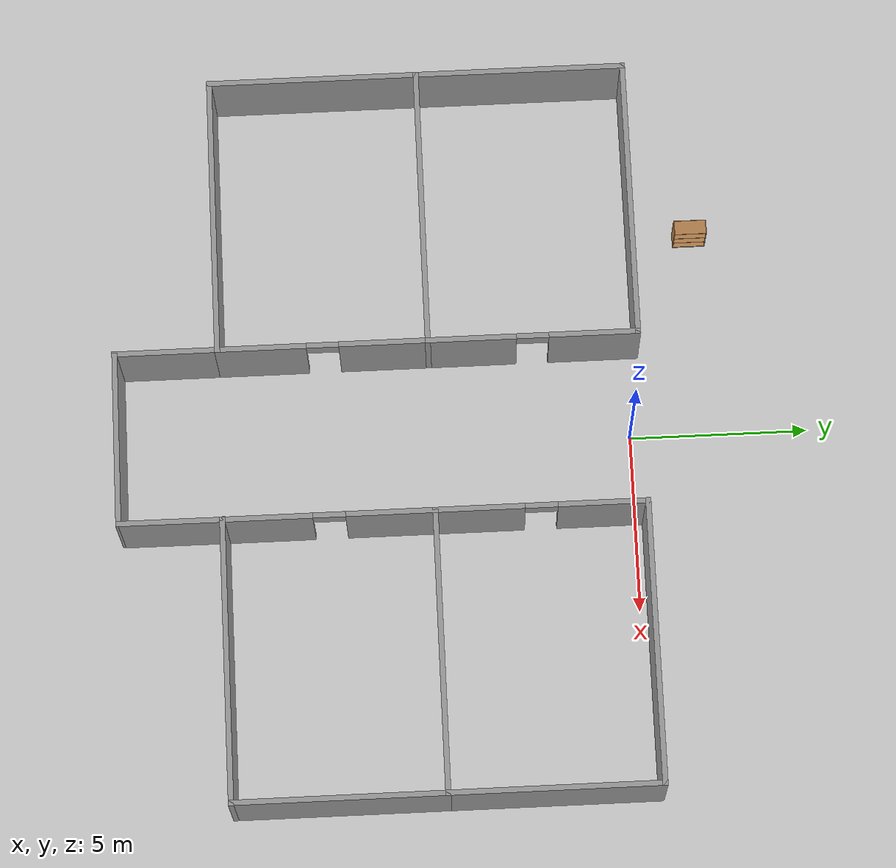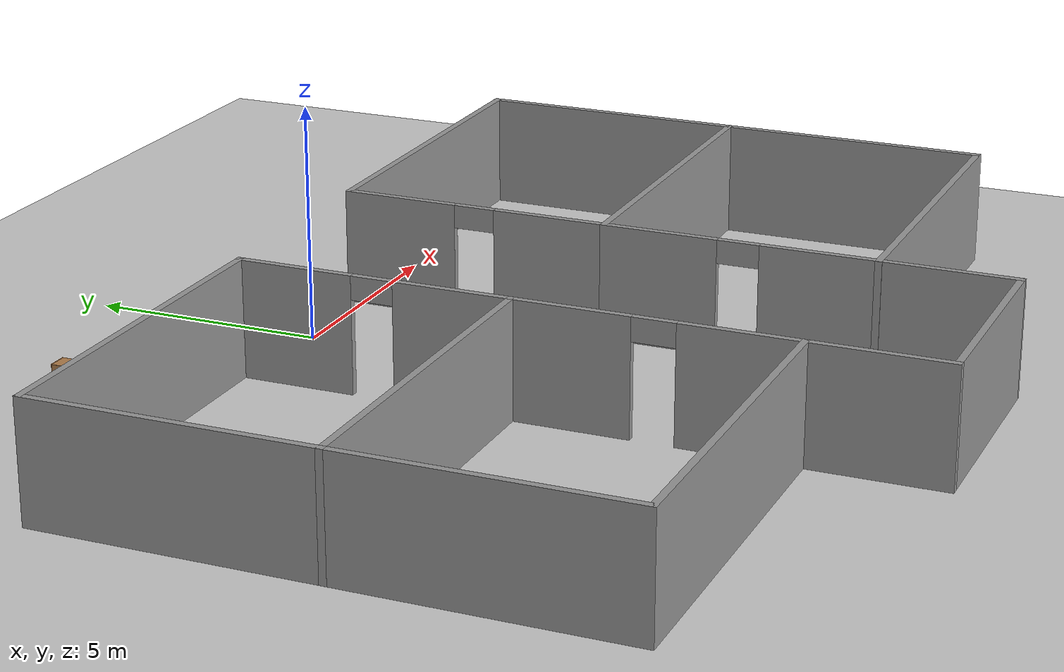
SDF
<sdf version="1.6">
 <world name="default">
  <model name="ground_plane">
   <static>1</static>
   <link name="link">
    <collision name="collision">
     <geometry><plane><normal>0 0 1</normal><size>100 100</size></plane></geometry>
     <surface>
      <contact><collide_bitmask>65535</collide_bitmask></contact>
      <friction><ode><mu>100</mu><mu2>50</mu2></ode></friction>
     </surface>
    </collision>
    <visual name="visual">
     <cast_shadows>0</cast_shadows>
     <geometry><plane><normal>0 0 1</normal><size>100 100</size></plane></geometry>
     <material>
      <script><uri>file://media/materials/scripts/gazebo.material</uri><name>Gazebo/Grey</name></script>
     </material>
    </visual>
   </link>
  </model>
  <model name="husky_SAGAT_first_half_docker">
   <pose>0 -7 0 0 -0 0</pose>
   <link name="Wall_11">
    <collision name="Wall_11_Collision">
     <geometry><box><size>6 0.15 2.5</size></box></geometry>
     <pose>0 0 1.25 0 -0 0</pose>
    </collision>
    <visual name="Wall_11_Visual">
     <pose>0 0 1.25 0 -0 0</pose>
     <geometry><box><size>6 0.15 2.5</size></box></geometry>
     <material>
      <script><uri>file://media/materials/scripts/gazebo.material</uri><name>Gazebo/Grey</name></script>
      <ambient>1 1 1 1</ambient>
     </material>
     <meta><layer>0</layer></meta>
    </visual>
    <pose>-10.28 4.35013 0 0 -0 1.5708</pose>
   </link>
   <link name="Wall_12">
    <collision name="Wall_12_Collision">
     <geometry><box><size>8 0.15 2.5</size></box></geometry>
     <pose>0 0 1.25 0 -0 0</pose>
    </collision>
    <visual name="Wall_12_Visual">
     <pose>0 0 1.25 0 -0 0</pose>
     <geometry><box><size>8 0.15 2.5</size></box></geometry>
     <material>
      <script><uri>file://media/materials/scripts/gazebo.material</uri><name>Gazebo/Grey</name></script>
      <ambient>1 1 1 1</ambient>
     </material>
     <meta><layer>0</layer></meta>
    </visual>
    <pose>-6.355 7.27513 0 0 -0 0</pose>
   </link>
   <link name="Wall_13">
    <pose>-2.43 4.35013 0 0 -0 -1.5708</pose>
    <visual name="Wall_13_Visual_0">
     <pose>-1.72303 0 1.25 0 -0 0</pose>
     <geometry><box><size>2.55394 0.15 2.5</size></box></geometry>
     <material>
      <script><uri>file://media/materials/scripts/gazebo.material</uri><name>Gazebo/Grey</name></script>
      <ambient>1 1 1 1</ambient>
     </material>
     <meta><layer>0</layer></meta>
    </visual>
    <collision name="Wall_13_Collision_0">
     <geometry><box><size>2.55394 0.15 2.5</size></box></geometry>
     <pose>-1.72303 0 1.25 0 -0 0</pose>
    </collision>
    <visual name="Wall_13_Visual_1">
     <pose>1.72697 0 1.25 0 -0 0</pose>
     <geometry><box><size>2.54606 0.15 2.5</size></box></geometry>
     <material>
      <script><uri>file://media/materials/scripts/gazebo.material</uri><name>Gazebo/Grey</name></script>
      <ambient>1 1 1 1</ambient>
     </material>
     <meta><layer>0</layer></meta>
    </visual>
    <collision name="Wall_13_Collision_1">
     <geometry><box><size>2.54606 0.15 2.5</size></box></geometry>
     <pose>1.72697 0 1.25 0 -0 0</pose>
    </collision>
    <visual name="Wall_13_Visual_2">
     <pose>0.003939 0 2.25 0 -0 0</pose>
     <geometry><box><size>0.9 0.15 0.5</size></box></geometry>
     <material>
      <script><uri>file://media/materials/scripts/gazebo.material</uri><name>Gazebo/Grey</name></script>
      <ambient>1 1 1 1</ambient>
     </material>
     <meta><layer>0</layer></meta>
    </visual>
    <collision name="Wall_13_Collision_2">
     <geometry><box><size>0.9 0.15 0.5</size></box></geometry>
     <pose>0.003939 0 2.25 0 -0 0</pose>
    </collision>
   </link>
   <link name="Wall_16">
    <collision name="Wall_16_Collision">
     <geometry><box><size>0.16 0.15 2.5</size></box></geometry>
     <pose>0 0 1.25 0 -0 0</pose>
    </collision>
    <visual name="Wall_16_Visual">
     <pose>0 0 1.25 0 -0 0</pose>
     <geometry><box><size>0.16 0.15 2.5</size></box></geometry>
     <material>
      <script><uri>file://media/materials/scripts/gazebo.material</uri><name>Gazebo/Grey</name></script>
      <ambient>1 1 1 1</ambient>
     </material>
     <meta><layer>0</layer></meta>
    </visual>
    <pose>2.425 -4.42487 0 0 -0 0</pose>
   </link>
   <link name="Wall_17">
    <pose>2.43 -1.49987 0 0 -0 1.5708</pose>
    <visual name="Wall_17_Visual_0">
     <pose>-1.72228 0 1.25 0 -0 0</pose>
     <geometry><box><size>2.55545 0.15 2.5</size></box></geometry>
     <material>
      <script><uri>file://media/materials/scripts/gazebo.material</uri><name>Gazebo/Grey</name></script>
      <ambient>1 1 1 1</ambient>
     </material>
     <meta><layer>0</layer></meta>
    </visual>
    <collision name="Wall_17_Collision_0">
     <geometry><box><size>2.55545 0.15 2.5</size></box></geometry>
     <pose>-1.72228 0 1.25 0 -0 0</pose>
    </collision>
    <visual name="Wall_17_Visual_1">
     <pose>1.72772 0 1.25 0 -0 0</pose>
     <geometry><box><size>2.54455 0.15 2.5</size></box></geometry>
     <material>
      <script><uri>file://media/materials/scripts/gazebo.material</uri><name>Gazebo/Grey</name></script>
      <ambient>1 1 1 1</ambient>
     </material>
     <meta><layer>0</layer></meta>
    </visual>
    <collision name="Wall_17_Collision_1">
     <geometry><box><size>2.54455 0.15 2.5</size></box></geometry>
     <pose>1.72772 0 1.25 0 -0 0</pose>
    </collision>
    <visual name="Wall_17_Visual_2">
     <pose>0.005449 0 2.25 0 -0 0</pose>
     <geometry><box><size>0.9 0.15 0.5</size></box></geometry>
     <material>
      <script><uri>file://media/materials/scripts/gazebo.material</uri><name>Gazebo/Grey</name></script>
      <ambient>1 1 1 1</ambient>
     </material>
     <meta><layer>0</layer></meta>
    </visual>
    <collision name="Wall_17_Collision_2">
     <geometry><box><size>0.9 0.15 0.5</size></box></geometry>
     <pose>0.005449 0 2.25 0 -0 0</pose>
    </collision>
   </link>
   <link name="Wall_18">
    <collision name="Wall_18_Collision">
     <geometry><box><size>8 0.15 2.5</size></box></geometry>
     <pose>0 0 1.25 0 -0 0</pose>
    </collision>
    <visual name="Wall_18_Visual">
     <pose>0 0 1.25 0 -0 0</pose>
     <geometry><box><size>8 0.15 2.5</size></box></geometry>
     <material>
      <script><uri>file://media/materials/scripts/gazebo.material</uri><name>Gazebo/Grey</name></script>
      <ambient>1 1 1 1</ambient>
     </material>
     <meta><layer>0</layer></meta>
    </visual>
    <pose>6.355 1.42513 0 0 -0 0</pose>
   </link>
   <link name="Wall_19">
    <collision name="Wall_19_Collision">
     <geometry><box><size>6 0.15 2.5</size></box></geometry>
     <pose>0 0 1.25 0 -0 0</pose>
    </collision>
    <visual name="Wall_19_Visual">
     <pose>0 0 1.25 0 -0 0</pose>
     <geometry><box><size>6 0.15 2.5</size></box></geometry>
     <material>
      <script><uri>file://media/materials/scripts/gazebo.material</uri><name>Gazebo/Grey</name></script>
      <ambient>1 1 1 1</ambient>
     </material>
     <meta><layer>0</layer></meta>
    </visual>
    <pose>10.28 -1.49987 0 0 -0 -1.5708</pose>
   </link>
   <link name="Wall_20">
    <collision name="Wall_20_Collision">
     <geometry><box><size>8 0.15 2.5</size></box></geometry>
     <pose>0 0 1.25 0 -0 0</pose>
    </collision>
    <visual name="Wall_20_Visual">
     <pose>0 0 1.25 0 -0 0</pose>
     <geometry><box><size>8 0.15 2.5</size></box></geometry>
     <material>
      <script><uri>file://media/materials/scripts/gazebo.material</uri><name>Gazebo/Grey</name></script>
      <ambient>1 1 1 1</ambient>
     </material>
     <meta><layer>0</layer></meta>
    </visual>
    <pose>6.355 -4.42487 0 0 -0 3.14159</pose>
   </link>
   <link name="Wall_24">
    <pose>2.43 4.35013 0 0 -0 1.5708</pose>
    <visual name="Wall_24_Visual_0">
     <pose>-1.72718 0 1.25 0 -0 0</pose>
     <geometry><box><size>2.54563 0.15 2.5</size></box></geometry>
     <material>
      <script><uri>file://media/materials/scripts/gazebo.material</uri><name>Gazebo/Grey</name></script>
      <ambient>1 1 1 1</ambient>
     </material>
     <meta><layer>0</layer></meta>
    </visual>
    <collision name="Wall_24_Collision_0">
     <geometry><box><size>2.54563 0.15 2.5</size></box></geometry>
     <pose>-1.72718 0 1.25 0 -0 0</pose>
    </collision>
    <visual name="Wall_24_Visual_1">
     <pose>1.72282 0 1.25 0 -0 0</pose>
     <geometry><box><size>2.55437 0.15 2.5</size></box></geometry>
     <material>
      <script><uri>file://media/materials/scripts/gazebo.material</uri><name>Gazebo/Grey</name></script>
      <ambient>1 1 1 1</ambient>
     </material>
     <meta><layer>0</layer></meta>
    </visual>
    <collision name="Wall_24_Collision_1">
     <geometry><box><size>2.55437 0.15 2.5</size></box></geometry>
     <pose>1.72282 0 1.25 0 -0 0</pose>
    </collision>
    <visual name="Wall_24_Visual_2">
     <pose>-0.004369 0 2.25 0 -0 0</pose>
     <geometry><box><size>0.9 0.15 0.5</size></box></geometry>
     <material>
      <script><uri>file://media/materials/scripts/gazebo.material</uri><name>Gazebo/Grey</name></script>
      <ambient>1 1 1 1</ambient>
     </material>
     <meta><layer>0</layer></meta>
    </visual>
    <collision name="Wall_24_Collision_2">
     <geometry><box><size>0.9 0.15 0.5</size></box></geometry>
     <pose>-0.004369 0 2.25 0 -0 0</pose>
    </collision>
   </link>
   <link name="Wall_25">
    <collision name="Wall_25_Collision">
     <geometry><box><size>8 0.15 2.5</size></box></geometry>
     <pose>0 0 1.25 0 -0 0</pose>
    </collision>
    <visual name="Wall_25_Visual">
     <pose>0 0 1.25 0 -0 0</pose>
     <geometry><box><size>8 0.15 2.5</size></box></geometry>
     <material>
      <script><uri>file://media/materials/scripts/gazebo.material</uri><name>Gazebo/Grey</name></script>
      <ambient>1 1 1 1</ambient>
     </material>
     <meta><layer>0</layer></meta>
    </visual>
    <pose>6.355 7.27513 0 0 -0 0</pose>
   </link>
   <link name="Wall_26">
    <collision name="Wall_26_Collision">
     <geometry><box><size>6 0.15 2.5</size></box></geometry>
     <pose>0 0 1.25 0 -0 0</pose>
    </collision>
    <visual name="Wall_26_Visual">
     <pose>0 0 1.25 0 -0 0</pose>
     <geometry><box><size>6 0.15 2.5</size></box></geometry>
     <material>
      <script><uri>file://media/materials/scripts/gazebo.material</uri><name>Gazebo/Grey</name></script>
      <ambient>1 1 1 1</ambient>
     </material>
     <meta><layer>0</layer></meta>
    </visual>
    <pose>10.28 4.35013 0 0 -0 -1.5708</pose>
   </link>
   <link name="Wall_29">
    <collision name="Wall_29_Collision">
     <geometry><box><size>3 0.15 2.5</size></box></geometry>
     <pose>0 0 1.25 0 -0 0</pose>
    </collision>
    <visual name="Wall_29_Visual">
     <pose>0 0 1.25 0 -0 0</pose>
     <geometry><box><size>3 0.15 2.5</size></box></geometry>
     <material>
      <script><uri>file://media/materials/scripts/gazebo.material</uri><name>Gazebo/Grey</name></script>
      <ambient>1 1 1 1</ambient>
     </material>
     <meta><layer>0</layer></meta>
    </visual>
    <pose>-2.43 -5.84987 0 0 -0 -1.5708</pose>
   </link>
   <link name="Wall_30">
    <collision name="Wall_30_Collision">
     <geometry><box><size>5 0.15 2.5</size></box></geometry>
     <pose>0 0 1.25 0 -0 0</pose>
    </collision>
    <visual name="Wall_30_Visual">
     <pose>0 0 1.25 0 -0 0</pose>
     <geometry><box><size>5 0.15 2.5</size></box></geometry>
     <material>
      <script><uri>file://media/materials/scripts/gazebo.material</uri><name>Gazebo/Grey</name></script>
      <ambient>1 1 1 1</ambient>
     </material>
     <meta><layer>0</layer></meta>
    </visual>
    <pose>-0.005 -7.27487 0 0 -0 0</pose>
   </link>
   <link name="Wall_31">
    <collision name="Wall_31_Collision">
     <geometry><box><size>3.00002 0.15 2.5</size></box></geometry>
     <pose>0 0 1.25 0 -0 0</pose>
    </collision>
    <visual name="Wall_31_Visual">
     <pose>0 0 1.25 0 -0 0</pose>
     <geometry><box><size>3.00002 0.15 2.5</size></box></geometry>
     <material>
      <script><uri>file://media/materials/scripts/gazebo.material</uri><name>Gazebo/Grey</name></script>
      <ambient>1 1 1 1</ambient>
     </material>
     <meta><layer>0</layer></meta>
    </visual>
    <pose>2.425 -5.84987 0 0 -0 1.56729</pose>
   </link>
   <link name="Wall_4">
    <collision name="Wall_4_Collision">
     <geometry><box><size>8 0.15 2.5</size></box></geometry>
     <pose>0 0 1.25 0 -0 0</pose>
    </collision>
    <visual name="Wall_4_Visual">
     <pose>0 0 1.25 0 -0 0</pose>
     <geometry><box><size>8 0.15 2.5</size></box></geometry>
     <material>
      <script><uri>file://media/materials/scripts/gazebo.material</uri><name>Gazebo/Grey</name></script>
      <ambient>1 1 1 1</ambient>
     </material>
     <meta><layer>0</layer></meta>
    </visual>
    <pose>-6.355 -4.42487 0 0 -0 0</pose>
   </link>
   <link name="Wall_5">
    <pose>-2.43 -1.49987 0 0 -0 1.5708</pose>
    <visual name="Wall_5_Visual_0">
     <pose>-1.7262 0 1.25 0 -0 0</pose>
     <geometry><box><size>2.5476 0.15 2.5</size></box></geometry>
     <material>
      <script><uri>file://media/materials/scripts/gazebo.material</uri><name>Gazebo/Grey</name></script>
      <ambient>1 1 1 1</ambient>
     </material>
     <meta><layer>0</layer></meta>
    </visual>
    <collision name="Wall_5_Collision_0">
     <geometry><box><size>2.5476 0.15 2.5</size></box></geometry>
     <pose>-1.7262 0 1.25 0 -0 0</pose>
    </collision>
    <visual name="Wall_5_Visual_1">
     <pose>1.7238 0 1.25 0 -0 0</pose>
     <geometry><box><size>2.5524 0.15 2.5</size></box></geometry>
     <material>
      <script><uri>file://media/materials/scripts/gazebo.material</uri><name>Gazebo/Grey</name></script>
      <ambient>1 1 1 1</ambient>
     </material>
     <meta><layer>0</layer></meta>
    </visual>
    <collision name="Wall_5_Collision_1">
     <geometry><box><size>2.5524 0.15 2.5</size></box></geometry>
     <pose>1.7238 0 1.25 0 -0 0</pose>
    </collision>
    <visual name="Wall_5_Visual_2">
     <pose>-0.002396 0 2.25 0 -0 0</pose>
     <geometry><box><size>0.9 0.15 0.5</size></box></geometry>
     <material>
      <script><uri>file://media/materials/scripts/gazebo.material</uri><name>Gazebo/Grey</name></script>
      <ambient>1 1 1 1</ambient>
     </material>
     <meta><layer>0</layer></meta>
    </visual>
    <collision name="Wall_5_Collision_2">
     <geometry><box><size>0.9 0.15 0.5</size></box></geometry>
     <pose>-0.002396 0 2.25 0 -0 0</pose>
    </collision>
   </link>
   <link name="Wall_6">
    <collision name="Wall_6_Collision">
     <geometry><box><size>8 0.15 2.5</size></box></geometry>
     <pose>0 0 1.25 0 -0 0</pose>
    </collision>
    <visual name="Wall_6_Visual">
     <pose>0 0 1.25 0 -0 0</pose>
     <geometry><box><size>8 0.15 2.5</size></box></geometry>
     <material>
      <script><uri>file://media/materials/scripts/gazebo.material</uri><name>Gazebo/Grey</name></script>
      <ambient>1 1 1 1</ambient>
     </material>
     <meta><layer>0</layer></meta>
    </visual>
    <pose>-6.355 1.42513 0 0 -0 3.14159</pose>
   </link>
   <link name="Wall_7">
    <collision name="Wall_7_Collision">
     <geometry><box><size>6 0.15 2.5</size></box></geometry>
     <pose>0 0 1.25 0 -0 0</pose>
    </collision>
    <visual name="Wall_7_Visual">
     <pose>0 0 1.25 0 -0 0</pose>
     <geometry><box><size>6 0.15 2.5</size></box></geometry>
     <material>
      <script><uri>file://media/materials/scripts/gazebo.material</uri><name>Gazebo/Grey</name></script>
      <ambient>1 1 1 1</ambient>
     </material>
     <meta><layer>0</layer></meta>
    </visual>
    <pose>-10.28 -1.49987 0 0 -0 -1.5708</pose>
   </link>
   <static>1</static>
  </model>
  <model name="bookshelf_0">
   <static>1</static>
   <link name="link">
    <inertial><mass>1</mass></inertial>
    <collision name="back">
     <pose>0 0.005 0.6 0 -0 0</pose>
     <geometry><box><size>0.9 0.01 1.2</size></box></geometry>
    </collision>
    <visual name="visual1">
     <pose>0 0.005 0.6 0 -0 0</pose>
     <geometry><box><size>0.9 0.01 1.2</size></box></geometry>
     <material>
      <script><uri>file://media/materials/scripts/gazebo.material</uri><name>Gazebo/Wood</name></script>
     </material>
    </visual>
    <collision name="left_side">
     <pose>0.45 -0.195 0.6 0 -0 0</pose>
     <geometry><box><size>0.02 0.4 1.2</size></box></geometry>
    </collision>
    <visual name="visual2">
     <pose>0.45 -0.195 0.6 0 -0 0</pose>
     <geometry><box><size>0.02 0.4 1.2</size></box></geometry>
     <material>
      <script><uri>file://media/materials/scripts/gazebo.material</uri><name>Gazebo/Wood</name></script>
     </material>
    </visual>
    <collision name="right_side">
     <pose>-0.45 -0.195 0.6 0 -0 0</pose>
     <geometry><box><size>0.02 0.4 1.2</size></box></geometry>
    </collision>
    <visual name="visual3">
     <pose>-0.45 -0.195 0.6 0 -0 0</pose>
     <geometry><box><size>0.02 0.4 1.2</size></box></geometry>
     <material>
      <script><uri>file://media/materials/scripts/gazebo.material</uri><name>Gazebo/Wood</name></script>
     </material>
    </visual>
    <collision name="bottom">
     <pose>0 -0.195 0.03 0 -0 0</pose>
     <geometry><box><size>0.88 0.4 0.06</size></box></geometry>
    </collision>
    <visual name="visual4">
     <pose>0 -0.195 0.03 0 -0 0</pose>
     <geometry><box><size>0.88 0.4 0.06</size></box></geometry>
     <material>
      <script><uri>file://media/materials/scripts/gazebo.material</uri><name>Gazebo/Wood</name></script>
     </material>
    </visual>
    <collision name="top">
     <pose>0 -0.195 1.19 0 -0 0</pose>
     <geometry><box><size>0.88 0.4 0.02</size></box></geometry>
    </collision>
    <visual name="visual5">
     <pose>0 -0.195 1.19 0 -0 0</pose>
     <geometry><box><size>0.88 0.4 0.02</size></box></geometry>
     <material>
      <script><uri>file://media/materials/scripts/gazebo.material</uri><name>Gazebo/Wood</name></script>
     </material>
    </visual>
    <collision name="low_shelf">
     <pose>0 -0.195 0.43 0 -0 0</pose>
     <geometry><box><size>0.88 0.4 0.02</size></box></geometry>
    </collision>
    <visual name="visual6">
     <pose>0 -0.195 0.43 0 -0 0</pose>
     <geometry><box><size>0.88 0.4 0.02</size></box></geometry>
     <material>
      <script><uri>file://media/materials/scripts/gazebo.material</uri><name>Gazebo/Wood</name></script>
     </material>
    </visual>
    <collision name="high_shelf">
     <pose>0 -0.195 0.8 0 -0 0</pose>
     <geometry><box><size>0.88 0.4 0.02</size></box></geometry>
    </collision>
    <visual name="visual7">
     <pose>0 -0.195 0.8 0 -0 0</pose>
     <geometry><box><size>0.88 0.4 0.02</size></box></geometry>
     <material>
      <script><uri>file://media/materials/scripts/gazebo.material</uri><name>Gazebo/Wood</name></script>
     </material>
    </visual>
   </link>
   <pose>-6 2 0 0 -0 1.5708</pose>
  </model>
 </world>
</sdf>
